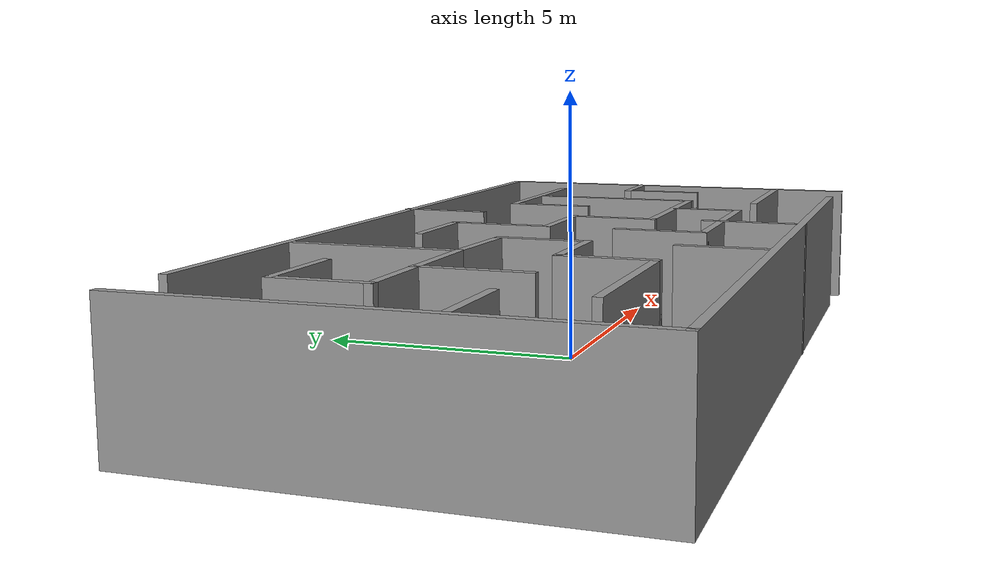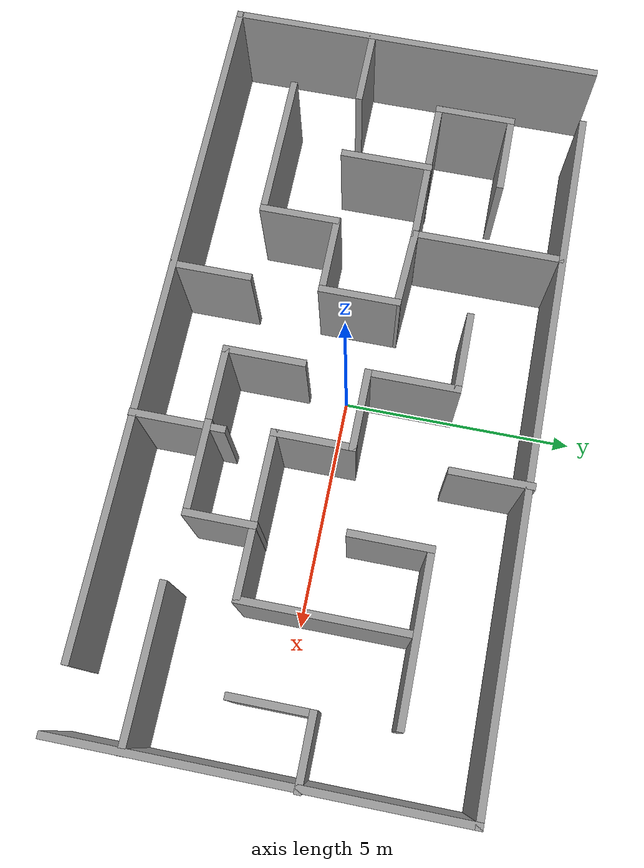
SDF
<?xml version='1.0'?>
<sdf version='1.7'>
  <model name='mazy_maze'>
    <pose>0.054439 -0.006896 0 0 -0 0</pose>
    <link name='Wall_1'>
      <collision name='Wall_1_Collision'>
        <geometry>
          <box>
            <size>14.75 0.15 2.5</size>
          </box>
        </geometry>
        <pose>0 0 1.25 0 -0 0</pose>
      </collision>
      <visual name='Wall_1_Visual'>
        <pose>0 0 1.25 0 -0 0</pose>
        <geometry>
          <box>
            <size>14.75 0.15 2.5</size>
          </box>
        </geometry>
        <material>
          <script>
            <uri>file://media/materials/scripts/gazebo.material</uri>
            <name>Gazebo/Grey</name>
          </script>
          <ambient>1 1 1 1</ambient>
        </material>
        <meta>
          <layer>0</layer>
        </meta>
      </visual>
      <pose>0.663251 4.0101 0 0 -0 0</pose>
    </link>
    <link name='Wall_11'>
      <collision name='Wall_11_Collision'>
        <geometry>
          <box>
            <size>1.75 0.15 2.5</size>
          </box>
        </geometry>
        <pose>0 0 1.25 0 -0 0</pose>
      </collision>
      <visual name='Wall_11_Visual'>
        <pose>0 0 1.25 0 -0 0</pose>
        <geometry>
          <box>
            <size>1.75 0.15 2.5</size>
          </box>
        </geometry>
        <material>
          <script>
            <uri>file://media/materials/scripts/gazebo.material</uri>
            <name>Gazebo/Grey</name>
          </script>
          <ambient>1 1 1 1</ambient>
        </material>
        <meta>
          <layer>0</layer>
        </meta>
      </visual>
      <pose>-0.0133 -1.68434 0 0 -0 -1.5708</pose>
    </link>
    <link name='Wall_12'>
      <collision name='Wall_12_Collision'>
        <geometry>
          <box>
            <size>1.75 0.15 2.5</size>
          </box>
        </geometry>
        <pose>0 0 1.25 0 -0 0</pose>
      </collision>
      <visual name='Wall_12_Visual'>
        <pose>0 0 1.25 0 -0 0</pose>
        <geometry>
          <box>
            <size>1.75 0.15 2.5</size>
          </box>
        </geometry>
        <material>
          <script>
            <uri>file://media/materials/scripts/gazebo.material</uri>
            <name>Gazebo/Grey</name>
          </script>
          <ambient>1 1 1 1</ambient>
        </material>
        <meta>
          <layer>0</layer>
        </meta>
      </visual>
      <pose>0.7867 -2.48434 0 0 -0 0</pose>
    </link>
    <link name='Wall_13'>
      <collision name='Wall_13_Collision'>
        <geometry>
          <box>
            <size>2 0.15 2.5</size>
          </box>
        </geometry>
        <pose>0 0 1.25 0 -0 0</pose>
      </collision>
      <visual name='Wall_13_Visual'>
        <pose>0 0 1.25 0 -0 0</pose>
        <geometry>
          <box>
            <size>2 0.15 2.5</size>
          </box>
        </geometry>
        <material>
          <script>
            <uri>file://media/materials/scripts/gazebo.material</uri>
            <name>Gazebo/Grey</name>
          </script>
          <ambient>1 1 1 1</ambient>
        </material>
        <meta>
          <layer>0</layer>
        </meta>
      </visual>
      <pose>2.5117 -2.48434 0 0 -0 0</pose>
    </link>
    <link name='Wall_14'>
      <collision name='Wall_14_Collision'>
        <geometry>
          <box>
            <size>1.5 0.15 2.5</size>
          </box>
        </geometry>
        <pose>0 0 1.25 0 -0 0</pose>
      </collision>
      <visual name='Wall_14_Visual'>
        <pose>0 0 1.25 0 -0 0</pose>
        <geometry>
          <box>
            <size>1.5 0.15 2.5</size>
          </box>
        </geometry>
        <material>
          <script>
            <uri>file://media/materials/scripts/gazebo.material</uri>
            <name>Gazebo/Grey</name>
          </script>
          <ambient>1 1 1 1</ambient>
        </material>
        <meta>
          <layer>0</layer>
        </meta>
      </visual>
      <pose>3.4367 -1.80934 0 0 -0 1.5708</pose>
    </link>
    <link name='Wall_16'>
      <collision name='Wall_16_Collision'>
        <geometry>
          <box>
            <size>1.75 0.15 2.5</size>
          </box>
        </geometry>
        <pose>0 0 1.25 0 -0 0</pose>
      </collision>
      <visual name='Wall_16_Visual'>
        <pose>0 0 1.25 0 -0 0</pose>
        <geometry>
          <box>
            <size>1.75 0.15 2.5</size>
          </box>
        </geometry>
        <material>
          <script>
            <uri>file://media/materials/scripts/gazebo.material</uri>
            <name>Gazebo/Grey</name>
          </script>
          <ambient>1 1 1 1</ambient>
        </material>
        <meta>
          <layer>0</layer>
        </meta>
      </visual>
      <pose>-0.862512 2.30769 0 0 -0 0</pose>
    </link>
    <link name='Wall_17'>
      <collision name='Wall_17_Collision'>
        <geometry>
          <box>
            <size>2 0.15 2.5</size>
          </box>
        </geometry>
        <pose>0 0 1.25 0 -0 0</pose>
      </collision>
      <visual name='Wall_17_Visual'>
        <pose>0 0 1.25 0 -0 0</pose>
        <geometry>
          <box>
            <size>2 0.15 2.5</size>
          </box>
        </geometry>
        <material>
          <script>
            <uri>file://media/materials/scripts/gazebo.material</uri>
            <name>Gazebo/Grey</name>
          </script>
          <ambient>1 1 1 1</ambient>
        </material>
        <meta>
          <layer>0</layer>
        </meta>
      </visual>
      <pose>-0.062512 1.38269 0 0 -0 -1.5708</pose>
    </link>
    <link name='Wall_18'>
      <collision name='Wall_18_Collision'>
        <geometry>
          <box>
            <size>1.75 0.15 2.5</size>
          </box>
        </geometry>
        <pose>0 0 1.25 0 -0 0</pose>
      </collision>
      <visual name='Wall_18_Visual'>
        <pose>0 0 1.25 0 -0 0</pose>
        <geometry>
          <box>
            <size>1.75 0.15 2.5</size>
          </box>
        </geometry>
        <material>
          <script>
            <uri>file://media/materials/scripts/gazebo.material</uri>
            <name>Gazebo/Grey</name>
          </script>
          <ambient>1 1 1 1</ambient>
        </material>
        <meta>
          <layer>0</layer>
        </meta>
      </visual>
      <pose>0.737488 0.457687 0 0 -0 0</pose>
    </link>
    <link name='Wall_19'>
      <collision name='Wall_19_Collision'>
        <geometry>
          <box>
            <size>1.75 0.15 2.5</size>
          </box>
        </geometry>
        <pose>0 0 1.25 0 -0 0</pose>
      </collision>
      <visual name='Wall_19_Visual'>
        <pose>0 0 1.25 0 -0 0</pose>
        <geometry>
          <box>
            <size>1.75 0.15 2.5</size>
          </box>
        </geometry>
        <material>
          <script>
            <uri>file://media/materials/scripts/gazebo.material</uri>
            <name>Gazebo/Grey</name>
          </script>
          <ambient>1 1 1 1</ambient>
        </material>
        <meta>
          <layer>0</layer>
        </meta>
      </visual>
      <pose>1.53749 -0.342313 0 0 -0 -1.5708</pose>
    </link>
    <link name='Wall_2'>
      <collision name='Wall_2_Collision'>
        <geometry>
          <box>
            <size>8.25 0.15 2.5</size>
          </box>
        </geometry>
        <pose>0 0 1.25 0 -0 0</pose>
      </collision>
      <visual name='Wall_2_Visual'>
        <pose>0 0 1.25 0 -0 0</pose>
        <geometry>
          <box>
            <size>8.25 0.15 2.5</size>
          </box>
        </geometry>
        <material>
          <script>
            <uri>file://media/materials/scripts/gazebo.material</uri>
            <name>Gazebo/Grey</name>
          </script>
          <ambient>1 1 1 1</ambient>
        </material>
        <meta>
          <layer>0</layer>
        </meta>
      </visual>
      <pose>7.96325 -0.0399 0 0 -0 -1.5708</pose>
    </link>
    <link name='Wall_20'>
      <collision name='Wall_20_Collision'>
        <geometry>
          <box>
            <size>3.5 0.15 2.5</size>
          </box>
        </geometry>
        <pose>0 0 1.25 0 -0 0</pose>
      </collision>
      <visual name='Wall_20_Visual'>
        <pose>0 0 1.25 0 -0 0</pose>
        <geometry>
          <box>
            <size>3.5 0.15 2.5</size>
          </box>
        </geometry>
        <material>
          <script>
            <uri>file://media/materials/scripts/gazebo.material</uri>
            <name>Gazebo/Grey</name>
          </script>
          <ambient>1 1 1 1</ambient>
        </material>
        <meta>
          <layer>0</layer>
        </meta>
      </visual>
      <pose>3.21249 -1.14231 0 0 -0 0</pose>
    </link>
    <link name='Wall_21'>
      <collision name='Wall_21_Collision'>
        <geometry>
          <box>
            <size>3.5 0.15 2.5</size>
          </box>
        </geometry>
        <pose>0 0 1.25 0 -0 0</pose>
      </collision>
      <visual name='Wall_21_Visual'>
        <pose>0 0 1.25 0 -0 0</pose>
        <geometry>
          <box>
            <size>3.5 0.15 2.5</size>
          </box>
        </geometry>
        <material>
          <script>
            <uri>file://media/materials/scripts/gazebo.material</uri>
            <name>Gazebo/Grey</name>
          </script>
          <ambient>1 1 1 1</ambient>
        </material>
        <meta>
          <layer>0</layer>
        </meta>
      </visual>
      <pose>4.88749 0.532687 0 0 -0 1.5708</pose>
    </link>
    <link name='Wall_23'>
      <collision name='Wall_23_Collision'>
        <geometry>
          <box>
            <size>3.25 0.15 2.5</size>
          </box>
        </geometry>
        <pose>0 0 1.25 0 -0 0</pose>
      </collision>
      <visual name='Wall_23_Visual'>
        <pose>0 0 1.25 0 -0 0</pose>
        <geometry>
          <box>
            <size>3.25 0.15 2.5</size>
          </box>
        </geometry>
        <material>
          <script>
            <uri>file://media/materials/scripts/gazebo.material</uri>
            <name>Gazebo/Grey</name>
          </script>
          <ambient>1 1 1 1</ambient>
        </material>
        <meta>
          <layer>0</layer>
        </meta>
      </visual>
      <pose>-3.31172 2.4069 0 0 -0 -1.5708</pose>
    </link>
    <link name='Wall_24'>
      <collision name='Wall_24_Collision'>
        <geometry>
          <box>
            <size>3.25 0.15 2.5</size>
          </box>
        </geometry>
        <pose>0 0 1.25 0 -0 0</pose>
      </collision>
      <visual name='Wall_24_Visual'>
        <pose>0 0 1.25 0 -0 0</pose>
        <geometry>
          <box>
            <size>3.25 0.15 2.5</size>
          </box>
        </geometry>
        <material>
          <script>
            <uri>file://media/materials/scripts/gazebo.material</uri>
            <name>Gazebo/Grey</name>
          </script>
          <ambient>1 1 1 1</ambient>
        </material>
        <meta>
          <layer>0</layer>
        </meta>
      </visual>
      <pose>-4.86172 0.856899 0 0 -0 3.14159</pose>
    </link>
    <link name='Wall_25'>
      <collision name='Wall_25_Collision'>
        <geometry>
          <box>
            <size>1.75 0.15 2.5</size>
          </box>
        </geometry>
        <pose>0 0 1.25 0 -0 0</pose>
      </collision>
      <visual name='Wall_25_Visual'>
        <pose>0 0 1.25 0 -0 0</pose>
        <geometry>
          <box>
            <size>1.75 0.15 2.5</size>
          </box>
        </geometry>
        <material>
          <script>
            <uri>file://media/materials/scripts/gazebo.material</uri>
            <name>Gazebo/Grey</name>
          </script>
          <ambient>1 1 1 1</ambient>
        </material>
        <meta>
          <layer>0</layer>
        </meta>
      </visual>
      <pose>-6.41172 1.6569 0 0 -0 1.5708</pose>
    </link>
    <link name='Wall_26'>
      <collision name='Wall_26_Collision'>
        <geometry>
          <box>
            <size>1.75 0.15 2.5</size>
          </box>
        </geometry>
        <pose>0 0 1.25 0 -0 0</pose>
      </collision>
      <visual name='Wall_26_Visual'>
        <pose>0 0 1.25 0 -0 0</pose>
        <geometry>
          <box>
            <size>1.75 0.15 2.5</size>
          </box>
        </geometry>
        <material>
          <script>
            <uri>file://media/materials/scripts/gazebo.material</uri>
            <name>Gazebo/Grey</name>
          </script>
          <ambient>1 1 1 1</ambient>
        </material>
        <meta>
          <layer>0</layer>
        </meta>
      </visual>
      <pose>-5.61172 2.4569 0 0 -0 0</pose>
    </link>
    <link name='Wall_28'>
      <collision name='Wall_28_Collision'>
        <geometry>
          <box>
            <size>2 0.15 2.5</size>
          </box>
        </geometry>
        <pose>0 0 1.25 0 -0 0</pose>
      </collision>
      <visual name='Wall_28_Visual'>
        <pose>0 0 1.25 0 -0 0</pose>
        <geometry>
          <box>
            <size>2 0.15 2.5</size>
          </box>
        </geometry>
        <material>
          <script>
            <uri>file://media/materials/scripts/gazebo.material</uri>
            <name>Gazebo/Grey</name>
          </script>
          <ambient>1 1 1 1</ambient>
        </material>
        <meta>
          <layer>0</layer>
        </meta>
      </visual>
      <pose>-4.93434 -0.053724 0 0 -0 -1.5708</pose>
    </link>
    <link name='Wall_30'>
      <collision name='Wall_30_Collision'>
        <geometry>
          <box>
            <size>3.25 0.15 2.5</size>
          </box>
        </geometry>
        <pose>0 0 1.25 0 -0 0</pose>
      </collision>
      <visual name='Wall_30_Visual'>
        <pose>0 0 1.25 0 -0 0</pose>
        <geometry>
          <box>
            <size>3.25 0.15 2.5</size>
          </box>
        </geometry>
        <material>
          <script>
            <uri>file://media/materials/scripts/gazebo.material</uri>
            <name>Gazebo/Grey</name>
          </script>
          <ambient>1 1 1 1</ambient>
        </material>
        <meta>
          <layer>0</layer>
        </meta>
      </visual>
      <pose>-4.84735 -2.42715 0 0 -0 0</pose>
    </link>
    <link name='Wall_31'>
      <collision name='Wall_31_Collision'>
        <geometry>
          <box>
            <size>1.75 0.15 2.5</size>
          </box>
        </geometry>
        <pose>0 0 1.25 0 -0 0</pose>
      </collision>
      <visual name='Wall_31_Visual'>
        <pose>0 0 1.25 0 -0 0</pose>
        <geometry>
          <box>
            <size>1.75 0.15 2.5</size>
          </box>
        </geometry>
        <material>
          <script>
            <uri>file://media/materials/scripts/gazebo.material</uri>
            <name>Gazebo/Grey</name>
          </script>
          <ambient>1 1 1 1</ambient>
        </material>
        <meta>
          <layer>0</layer>
        </meta>
      </visual>
      <pose>-3.29735 -1.62715 0 0 -0 1.5708</pose>
    </link>
    <link name='Wall_32'>
      <collision name='Wall_32_Collision'>
        <geometry>
          <box>
            <size>1.75 0.15 2.5</size>
          </box>
        </geometry>
        <pose>0 0 1.25 0 -0 0</pose>
      </collision>
      <visual name='Wall_32_Visual'>
        <pose>0 0 1.25 0 -0 0</pose>
        <geometry>
          <box>
            <size>1.75 0.15 2.5</size>
          </box>
        </geometry>
        <material>
          <script>
            <uri>file://media/materials/scripts/gazebo.material</uri>
            <name>Gazebo/Grey</name>
          </script>
          <ambient>1 1 1 1</ambient>
        </material>
        <meta>
          <layer>0</layer>
        </meta>
      </visual>
      <pose>-2.49735 -0.827148 0 0 -0 0</pose>
    </link>
    <link name='Wall_33'>
      <collision name='Wall_33_Collision'>
        <geometry>
          <box>
            <size>1.75 0.15 2.5</size>
          </box>
        </geometry>
        <pose>0 0 1.25 0 -0 0</pose>
      </collision>
      <visual name='Wall_33_Visual'>
        <pose>0 0 1.25 0 -0 0</pose>
        <geometry>
          <box>
            <size>1.75 0.15 2.5</size>
          </box>
        </geometry>
        <material>
          <script>
            <uri>file://media/materials/scripts/gazebo.material</uri>
            <name>Gazebo/Grey</name>
          </script>
          <ambient>1 1 1 1</ambient>
        </material>
        <meta>
          <layer>0</layer>
        </meta>
      </visual>
      <pose>-1.69735 -0.027148 0 0 -0 1.5708</pose>
    </link>
    <link name='Wall_35'>
      <collision name='Wall_35_Collision'>
        <geometry>
          <box>
            <size>1.76656 0.15 2.5</size>
          </box>
        </geometry>
        <pose>0 0 1.25 0 -0 0</pose>
      </collision>
      <visual name='Wall_35_Visual'>
        <pose>0 0 1.25 0 -0 0</pose>
        <geometry>
          <box>
            <size>1.76656 0.15 2.5</size>
          </box>
        </geometry>
        <material>
          <script>
            <uri>file://media/materials/scripts/gazebo.material</uri>
            <name>Gazebo/Grey</name>
          </script>
          <ambient>1 1 1 1</ambient>
        </material>
        <meta>
          <layer>0</layer>
        </meta>
      </visual>
      <pose>-2.50454 0.814875 0 0 -0 3.08958</pose>
    </link>
    <link name='Wall_37'>
      <collision name='Wall_37_Collision'>
        <geometry>
          <box>
            <size>1.75 0.15 2.5</size>
          </box>
        </geometry>
        <pose>0 0 1.25 0 -0 0</pose>
      </collision>
      <visual name='Wall_37_Visual'>
        <pose>0 0 1.25 0 -0 0</pose>
        <geometry>
          <box>
            <size>1.75 0.15 2.5</size>
          </box>
        </geometry>
        <material>
          <script>
            <uri>file://media/materials/scripts/gazebo.material</uri>
            <name>Gazebo/Grey</name>
          </script>
          <ambient>1 1 1 1</ambient>
        </material>
        <meta>
          <layer>0</layer>
        </meta>
      </visual>
      <pose>1.63591 3.2633 0 0 -0 -1.5708</pose>
    </link>
    <link name='Wall_39'>
      <collision name='Wall_39_Collision'>
        <geometry>
          <box>
            <size>1.75 0.15 2.5</size>
          </box>
        </geometry>
        <pose>0 0 1.25 0 -0 0</pose>
      </collision>
      <visual name='Wall_39_Visual'>
        <pose>0 0 1.25 0 -0 0</pose>
        <geometry>
          <box>
            <size>1.75 0.15 2.5</size>
          </box>
        </geometry>
        <material>
          <script>
            <uri>file://media/materials/scripts/gazebo.material</uri>
            <name>Gazebo/Grey</name>
          </script>
          <ambient>1 1 1 1</ambient>
        </material>
        <meta>
          <layer>0</layer>
        </meta>
      </visual>
      <pose>3.23192 1.53828 0 0 -0 1.5708</pose>
    </link>
    <link name='Wall_4'>
      <collision name='Wall_4_Collision'>
        <geometry>
          <box>
            <size>8.25 0.15 2.5</size>
          </box>
        </geometry>
        <pose>0 0 1.25 0 -0 0</pose>
      </collision>
      <visual name='Wall_4_Visual'>
        <pose>0 0 1.25 0 -0 0</pose>
        <geometry>
          <box>
            <size>8.25 0.15 2.5</size>
          </box>
        </geometry>
        <material>
          <script>
            <uri>file://media/materials/scripts/gazebo.material</uri>
            <name>Gazebo/Grey</name>
          </script>
          <ambient>1 1 1 1</ambient>
        </material>
        <meta>
          <layer>0</layer>
        </meta>
      </visual>
      <pose>-7.99336 0.0399 0 0 -0 -1.5708</pose>
    </link>
    <link name='Wall_40'>
      <collision name='Wall_40_Collision'>
        <geometry>
          <box>
            <size>3.5 0.15 2.5</size>
          </box>
        </geometry>
        <pose>0 0 1.25 0 -0 0</pose>
      </collision>
      <visual name='Wall_40_Visual'>
        <pose>0 0 1.25 0 -0 0</pose>
        <geometry>
          <box>
            <size>3.5 0.15 2.5</size>
          </box>
        </geometry>
        <material>
          <script>
            <uri>file://media/materials/scripts/gazebo.material</uri>
            <name>Gazebo/Grey</name>
          </script>
          <ambient>1 1 1 1</ambient>
        </material>
        <meta>
          <layer>0</layer>
        </meta>
      </visual>
      <pose>4.90692 2.33827 0 0 -0 0</pose>
    </link>
    <link name='Wall_42'>
      <collision name='Wall_42_Collision'>
        <geometry>
          <box>
            <size>1.5 0.15 2.5</size>
          </box>
        </geometry>
        <pose>0 0 1.25 0 -0 0</pose>
      </collision>
      <visual name='Wall_42_Visual'>
        <pose>0 0 1.25 0 -0 0</pose>
        <geometry>
          <box>
            <size>1.5 0.15 2.5</size>
          </box>
        </geometry>
        <material>
          <script>
            <uri>file://media/materials/scripts/gazebo.material</uri>
            <name>Gazebo/Grey</name>
          </script>
          <ambient>1 1 1 1</ambient>
        </material>
        <meta>
          <layer>0</layer>
        </meta>
      </visual>
      <pose>7.31836 0.711675 0 0 -0 3.14159</pose>
    </link>
    <link name='Wall_43'>
      <collision name='Wall_43_Collision'>
        <geometry>
          <box>
            <size>1.75 0.15 2.5</size>
          </box>
        </geometry>
        <pose>0 0 1.25 0 -0 0</pose>
      </collision>
      <visual name='Wall_43_Visual'>
        <pose>0 0 1.25 0 -0 0</pose>
        <geometry>
          <box>
            <size>1.75 0.15 2.5</size>
          </box>
        </geometry>
        <material>
          <script>
            <uri>file://media/materials/scripts/gazebo.material</uri>
            <name>Gazebo/Grey</name>
          </script>
          <ambient>1 1 1 1</ambient>
        </material>
        <meta>
          <layer>0</layer>
        </meta>
      </visual>
      <pose>6.64336 -0.088325 0 0 -0 -1.5708</pose>
    </link>
    <link name='Wall_45'>
      <collision name='Wall_45_Collision'>
        <geometry>
          <box>
            <size>3.25 0.15 2.5</size>
          </box>
        </geometry>
        <pose>0 0 1.25 0 -0 0</pose>
      </collision>
      <visual name='Wall_45_Visual'>
        <pose>0 0 1.25 0 -0 0</pose>
        <geometry>
          <box>
            <size>3.25 0.15 2.5</size>
          </box>
        </geometry>
        <material>
          <script>
            <uri>file://media/materials/scripts/gazebo.material</uri>
            <name>Gazebo/Grey</name>
          </script>
          <ambient>1 1 1 1</ambient>
        </material>
        <meta>
          <layer>0</layer>
        </meta>
      </visual>
      <pose>6.41676 -2.58675 0 0 -0 3.14159</pose>
    </link>
    <link name='Wall_47'>
      <collision name='Wall_47_Collision'>
        <geometry>
          <box>
            <size>1.75 0.15 2.5</size>
          </box>
        </geometry>
        <pose>0 0 1.25 0 -0 0</pose>
      </collision>
      <visual name='Wall_47_Visual'>
        <pose>0 0 1.25 0 -0 0</pose>
        <geometry>
          <box>
            <size>1.75 0.15 2.5</size>
          </box>
        </geometry>
        <material>
          <script>
            <uri>file://media/materials/scripts/gazebo.material</uri>
            <name>Gazebo/Grey</name>
          </script>
          <ambient>1 1 1 1</ambient>
        </material>
        <meta>
          <layer>0</layer>
        </meta>
      </visual>
      <pose>-7.19336 -0.937537 0 0 -0 0</pose>
    </link>
    <link name='Wall_5'>
      <collision name='Wall_5_Collision'>
        <geometry>
          <box>
            <size>14.75 0.15 2.5</size>
          </box>
        </geometry>
        <pose>0 0 1.25 0 -0 0</pose>
      </collision>
      <visual name='Wall_5_Visual'>
        <pose>0 0 1.25 0 -0 0</pose>
        <geometry>
          <box>
            <size>14.75 0.15 2.5</size>
          </box>
        </geometry>
        <material>
          <script>
            <uri>file://media/materials/scripts/gazebo.material</uri>
            <name>Gazebo/Grey</name>
          </script>
          <ambient>1 1 1 1</ambient>
        </material>
        <meta>
          <layer>0</layer>
        </meta>
      </visual>
      <pose>-0.693359 -4.0101 0 0 -0 0</pose>
    </link>
    <link name='Wall_7'>
      <collision name='Wall_7_Collision'>
        <geometry>
          <box>
            <size>1.75 0.15 2.5</size>
          </box>
        </geometry>
        <pose>0 0 1.25 0 -0 0</pose>
      </collision>
      <visual name='Wall_7_Visual'>
        <pose>0 0 1.25 0 -0 0</pose>
        <geometry>
          <box>
            <size>1.75 0.15 2.5</size>
          </box>
        </geometry>
        <material>
          <script>
            <uri>file://media/materials/scripts/gazebo.material</uri>
            <name>Gazebo/Grey</name>
          </script>
          <ambient>1 1 1 1</ambient>
        </material>
        <meta>
          <layer>0</layer>
        </meta>
      </visual>
      <pose>-1.66251 -3.19656 0 0 -0 1.5708</pose>
    </link>
    <link name='Wall_9'>
      <collision name='Wall_9_Collision'>
        <geometry>
          <box>
            <size>2 0.15 2.5</size>
          </box>
        </geometry>
        <pose>0 0 1.25 0 -0 0</pose>
      </collision>
      <visual name='Wall_9_Visual'>
        <pose>0 0 1.25 0 -0 0</pose>
        <geometry>
          <box>
            <size>2 0.15 2.5</size>
          </box>
        </geometry>
        <material>
          <script>
            <uri>file://media/materials/scripts/gazebo.material</uri>
            <name>Gazebo/Grey</name>
          </script>
          <ambient>1 1 1 1</ambient>
        </material>
        <meta>
          <layer>0</layer>
        </meta>
      </visual>
      <pose>1.66251 -3.09816 0 0 -0 1.5708</pose>
    </link>
    <static>1</static>
  </model>
</sdf>
